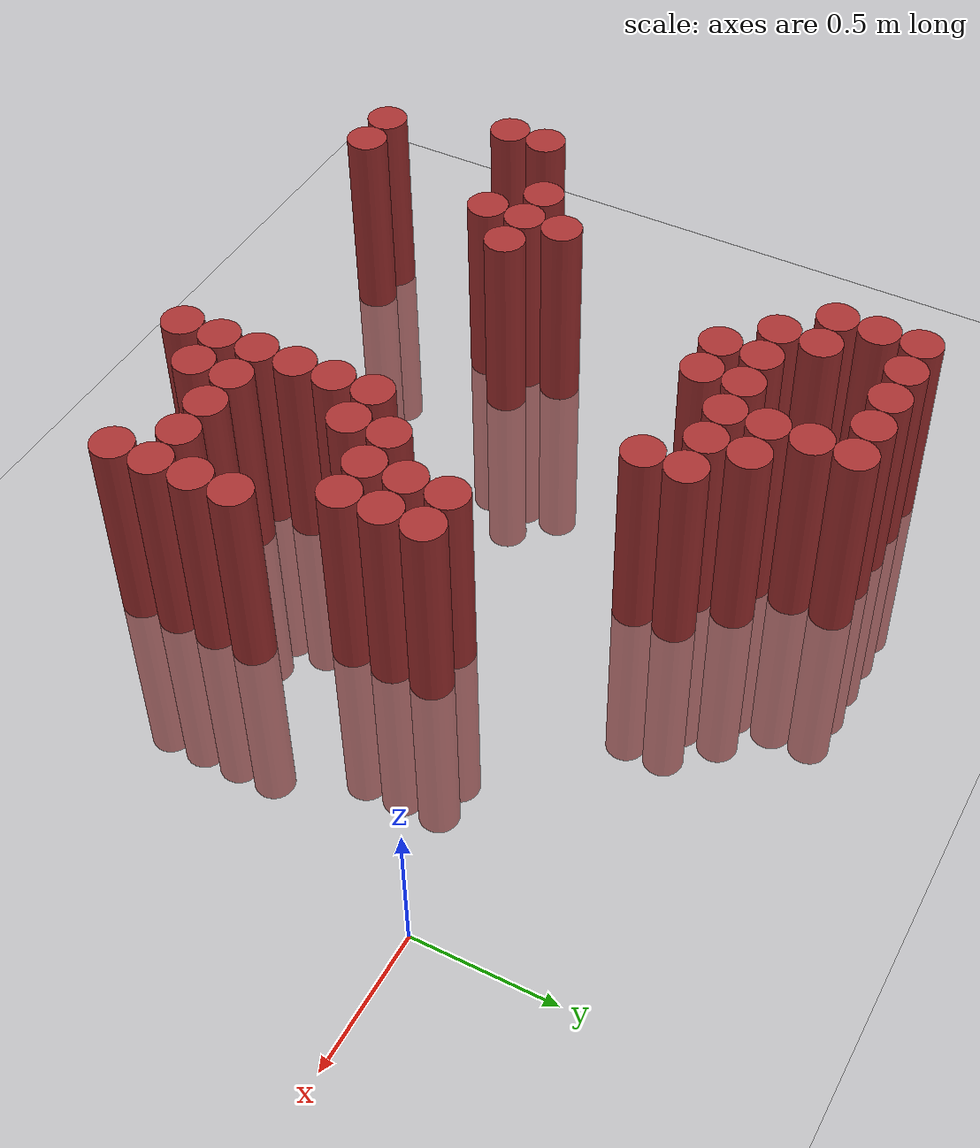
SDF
<sdf version="1.6">
 <world name="default">
  <model name="ground_plane">
   <static>1</static>
   <link name="link">
    <collision name="collision">
     <geometry><plane><normal>0 0 1</normal><size>100 100</size></plane></geometry>
     <surface><friction><ode><mu>100</mu><mu2>50</mu2></ode></friction></surface>
    </collision>
    <visual name="visual">
     <cast_shadows>0</cast_shadows>
     <geometry><plane><normal>0 0 1</normal><size>100 100</size></plane></geometry>
     <material>
      <script><uri>file://media/materials/scripts/gazebo.material</uri><name>Gazebo/Grey</name></script>
     </material>
    </visual>
   </link>
  </model>
  <model name="unit_cylinder_300">
   <static>1</static>
   <pose>-2.825000 -1.175000 0.000000 0.000000 0.000000 0.000000</pose>
   <link name="link">
    <inertial>
     <mass>1</mass>
     <inertia><ixx>0.145833</ixx><ixy>0</ixy><ixz>0</ixz><iyy>0.145833</iyy><iyz>0</iyz><izz>0.125</izz></inertia>
    </inertial>
    <collision name="collision">
     <geometry><cylinder><radius>0.075000</radius><length>1.5</length></cylinder></geometry>
    </collision>
    <visual name="visual">
     <geometry><cylinder><radius>0.075000</radius><length>1.5</length></cylinder></geometry>
     <material>
      <ambient>0.648000 0.192000 0.192000 1</ambient>
      <diffuse>0.648000 0.192000 0.192000 1</diffuse>
     </material>
     <material>
      <script><name>Gazebo/Grey</name><uri>file://media/materials/scripts/gazebo.material</uri></script>
     </material>
    </visual>
   </link>
  </model>
  <model name="unit_cylinder_301">
   <static>1</static>
   <pose>-2.825000 -1.025000 0.000000 0.000000 0.000000 0.000000</pose>
   <link name="link">
    <inertial>
     <mass>1</mass>
     <inertia><ixx>0.145833</ixx><ixy>0</ixy><ixz>0</ixz><iyy>0.145833</iyy><iyz>0</iyz><izz>0.125</izz></inertia>
    </inertial>
    <collision name="collision">
     <geometry><cylinder><radius>0.075000</radius><length>1.5</length></cylinder></geometry>
    </collision>
    <visual name="visual">
     <geometry><cylinder><radius>0.075000</radius><length>1.5</length></cylinder></geometry>
     <material>
      <ambient>0.648000 0.192000 0.192000 1</ambient>
      <diffuse>0.648000 0.192000 0.192000 1</diffuse>
     </material>
     <material>
      <script><name>Gazebo/Grey</name><uri>file://media/materials/scripts/gazebo.material</uri></script>
     </material>
    </visual>
   </link>
  </model>
  <model name="unit_cylinder_305">
   <static>1</static>
   <pose>-2.675000 -1.625000 0.000000 0.000000 0.000000 0.000000</pose>
   <link name="link">
    <inertial>
     <mass>1</mass>
     <inertia><ixx>0.145833</ixx><ixy>0</ixy><ixz>0</ixz><iyy>0.145833</iyy><iyz>0</iyz><izz>0.125</izz></inertia>
    </inertial>
    <collision name="collision">
     <geometry><cylinder><radius>0.075000</radius><length>1.5</length></cylinder></geometry>
    </collision>
    <visual name="visual">
     <geometry><cylinder><radius>0.075000</radius><length>1.5</length></cylinder></geometry>
     <material>
      <ambient>0.648000 0.192000 0.192000 1</ambient>
      <diffuse>0.648000 0.192000 0.192000 1</diffuse>
     </material>
     <material>
      <script><name>Gazebo/Grey</name><uri>file://media/materials/scripts/gazebo.material</uri></script>
     </material>
    </visual>
   </link>
  </model>
  <model name="unit_cylinder_309">
   <static>1</static>
   <pose>-2.525000 -1.625000 0.000000 0.000000 0.000000 0.000000</pose>
   <link name="link">
    <inertial>
     <mass>1</mass>
     <inertia><ixx>0.145833</ixx><ixy>0</ixy><ixz>0</ixz><iyy>0.145833</iyy><iyz>0</iyz><izz>0.125</izz></inertia>
    </inertial>
    <collision name="collision">
     <geometry><cylinder><radius>0.075000</radius><length>1.5</length></cylinder></geometry>
    </collision>
    <visual name="visual">
     <geometry><cylinder><radius>0.075000</radius><length>1.5</length></cylinder></geometry>
     <material>
      <ambient>0.648000 0.192000 0.192000 1</ambient>
      <diffuse>0.648000 0.192000 0.192000 1</diffuse>
     </material>
     <material>
      <script><name>Gazebo/Grey</name><uri>file://media/materials/scripts/gazebo.material</uri></script>
     </material>
    </visual>
   </link>
  </model>
  <model name="unit_cylinder_310">
   <static>1</static>
   <pose>-2.525000 -0.875000 0.000000 0.000000 0.000000 0.000000</pose>
   <link name="link">
    <inertial>
     <mass>1</mass>
     <inertia><ixx>0.145833</ixx><ixy>0</ixy><ixz>0</ixz><iyy>0.145833</iyy><iyz>0</iyz><izz>0.125</izz></inertia>
    </inertial>
    <collision name="collision">
     <geometry><cylinder><radius>0.075000</radius><length>1.5</length></cylinder></geometry>
    </collision>
    <visual name="visual">
     <geometry><cylinder><radius>0.075000</radius><length>1.5</length></cylinder></geometry>
     <material>
      <ambient>0.648000 0.192000 0.192000 1</ambient>
      <diffuse>0.648000 0.192000 0.192000 1</diffuse>
     </material>
     <material>
      <script><name>Gazebo/Grey</name><uri>file://media/materials/scripts/gazebo.material</uri></script>
     </material>
    </visual>
   </link>
  </model>
  <model name="unit_cylinder_313">
   <static>1</static>
   <pose>-2.375000 -1.025000 0.000000 0.000000 0.000000 0.000000</pose>
   <link name="link">
    <inertial>
     <mass>1</mass>
     <inertia><ixx>0.145833</ixx><ixy>0</ixy><ixz>0</ixz><iyy>0.145833</iyy><iyz>0</iyz><izz>0.125</izz></inertia>
    </inertial>
    <collision name="collision">
     <geometry><cylinder><radius>0.075000</radius><length>1.5</length></cylinder></geometry>
    </collision>
    <visual name="visual">
     <geometry><cylinder><radius>0.075000</radius><length>1.5</length></cylinder></geometry>
     <material>
      <ambient>0.648000 0.192000 0.192000 1</ambient>
      <diffuse>0.648000 0.192000 0.192000 1</diffuse>
     </material>
     <material>
      <script><name>Gazebo/Grey</name><uri>file://media/materials/scripts/gazebo.material</uri></script>
     </material>
    </visual>
   </link>
  </model>
  <model name="unit_cylinder_314">
   <static>1</static>
   <pose>-2.375000 -0.875000 0.000000 0.000000 0.000000 0.000000</pose>
   <link name="link">
    <inertial>
     <mass>1</mass>
     <inertia><ixx>0.145833</ixx><ixy>0</ixy><ixz>0</ixz><iyy>0.145833</iyy><iyz>0</iyz><izz>0.125</izz></inertia>
    </inertial>
    <collision name="collision">
     <geometry><cylinder><radius>0.075000</radius><length>1.5</length></cylinder></geometry>
    </collision>
    <visual name="visual">
     <geometry><cylinder><radius>0.075000</radius><length>1.5</length></cylinder></geometry>
     <material>
      <ambient>0.648000 0.192000 0.192000 1</ambient>
      <diffuse>0.648000 0.192000 0.192000 1</diffuse>
     </material>
     <material>
      <script><name>Gazebo/Grey</name><uri>file://media/materials/scripts/gazebo.material</uri></script>
     </material>
    </visual>
   </link>
  </model>
  <model name="unit_cylinder_315">
   <static>1</static>
   <pose>-2.375000 -0.725000 0.000000 0.000000 0.000000 0.000000</pose>
   <link name="link">
    <inertial>
     <mass>1</mass>
     <inertia><ixx>0.145833</ixx><ixy>0</ixy><ixz>0</ixz><iyy>0.145833</iyy><iyz>0</iyz><izz>0.125</izz></inertia>
    </inertial>
    <collision name="collision">
     <geometry><cylinder><radius>0.075000</radius><length>1.5</length></cylinder></geometry>
    </collision>
    <visual name="visual">
     <geometry><cylinder><radius>0.075000</radius><length>1.5</length></cylinder></geometry>
     <material>
      <ambient>0.648000 0.192000 0.192000 1</ambient>
      <diffuse>0.648000 0.192000 0.192000 1</diffuse>
     </material>
     <material>
      <script><name>Gazebo/Grey</name><uri>file://media/materials/scripts/gazebo.material</uri></script>
     </material>
    </visual>
   </link>
  </model>
  <model name="unit_cylinder_316">
   <static>1</static>
   <pose>-2.375000 0.325000 0.000000 0.000000 0.000000 0.000000</pose>
   <link name="link">
    <inertial>
     <mass>1</mass>
     <inertia><ixx>0.145833</ixx><ixy>0</ixy><ixz>0</ixz><iyy>0.145833</iyy><iyz>0</iyz><izz>0.125</izz></inertia>
    </inertial>
    <collision name="collision">
     <geometry><cylinder><radius>0.075000</radius><length>1.5</length></cylinder></geometry>
    </collision>
    <visual name="visual">
     <geometry><cylinder><radius>0.075000</radius><length>1.5</length></cylinder></geometry>
     <material>
      <ambient>0.648000 0.192000 0.192000 1</ambient>
      <diffuse>0.648000 0.192000 0.192000 1</diffuse>
     </material>
     <material>
      <script><name>Gazebo/Grey</name><uri>file://media/materials/scripts/gazebo.material</uri></script>
     </material>
    </visual>
   </link>
  </model>
  <model name="unit_cylinder_317">
   <static>1</static>
   <pose>-2.375000 0.475000 0.000000 0.000000 0.000000 0.000000</pose>
   <link name="link">
    <inertial>
     <mass>1</mass>
     <inertia><ixx>0.145833</ixx><ixy>0</ixy><ixz>0</ixz><iyy>0.145833</iyy><iyz>0</iyz><izz>0.125</izz></inertia>
    </inertial>
    <collision name="collision">
     <geometry><cylinder><radius>0.075000</radius><length>1.5</length></cylinder></geometry>
    </collision>
    <visual name="visual">
     <geometry><cylinder><radius>0.075000</radius><length>1.5</length></cylinder></geometry>
     <material>
      <ambient>0.648000 0.192000 0.192000 1</ambient>
      <diffuse>0.648000 0.192000 0.192000 1</diffuse>
     </material>
     <material>
      <script><name>Gazebo/Grey</name><uri>file://media/materials/scripts/gazebo.material</uri></script>
     </material>
    </visual>
   </link>
  </model>
  <model name="unit_cylinder_318">
   <static>1</static>
   <pose>-2.375000 0.625000 0.000000 0.000000 0.000000 0.000000</pose>
   <link name="link">
    <inertial>
     <mass>1</mass>
     <inertia><ixx>0.145833</ixx><ixy>0</ixy><ixz>0</ixz><iyy>0.145833</iyy><iyz>0</iyz><izz>0.125</izz></inertia>
    </inertial>
    <collision name="collision">
     <geometry><cylinder><radius>0.075000</radius><length>1.5</length></cylinder></geometry>
    </collision>
    <visual name="visual">
     <geometry><cylinder><radius>0.075000</radius><length>1.5</length></cylinder></geometry>
     <material>
      <ambient>0.648000 0.192000 0.192000 1</ambient>
      <diffuse>0.648000 0.192000 0.192000 1</diffuse>
     </material>
     <material>
      <script><name>Gazebo/Grey</name><uri>file://media/materials/scripts/gazebo.material</uri></script>
     </material>
    </visual>
   </link>
  </model>
  <model name="unit_cylinder_321">
   <static>1</static>
   <pose>-2.225000 -0.875000 0.000000 0.000000 0.000000 0.000000</pose>
   <link name="link">
    <inertial>
     <mass>1</mass>
     <inertia><ixx>0.145833</ixx><ixy>0</ixy><ixz>0</ixz><iyy>0.145833</iyy><iyz>0</iyz><izz>0.125</izz></inertia>
    </inertial>
    <collision name="collision">
     <geometry><cylinder><radius>0.075000</radius><length>1.5</length></cylinder></geometry>
    </collision>
    <visual name="visual">
     <geometry><cylinder><radius>0.075000</radius><length>1.5</length></cylinder></geometry>
     <material>
      <ambient>0.648000 0.192000 0.192000 1</ambient>
      <diffuse>0.648000 0.192000 0.192000 1</diffuse>
     </material>
     <material>
      <script><name>Gazebo/Grey</name><uri>file://media/materials/scripts/gazebo.material</uri></script>
     </material>
    </visual>
   </link>
  </model>
  <model name="unit_cylinder_322">
   <static>1</static>
   <pose>-2.225000 0.175000 0.000000 0.000000 0.000000 0.000000</pose>
   <link name="link">
    <inertial>
     <mass>1</mass>
     <inertia><ixx>0.145833</ixx><ixy>0</ixy><ixz>0</ixz><iyy>0.145833</iyy><iyz>0</iyz><izz>0.125</izz></inertia>
    </inertial>
    <collision name="collision">
     <geometry><cylinder><radius>0.075000</radius><length>1.5</length></cylinder></geometry>
    </collision>
    <visual name="visual">
     <geometry><cylinder><radius>0.075000</radius><length>1.5</length></cylinder></geometry>
     <material>
      <ambient>0.648000 0.192000 0.192000 1</ambient>
      <diffuse>0.648000 0.192000 0.192000 1</diffuse>
     </material>
     <material>
      <script><name>Gazebo/Grey</name><uri>file://media/materials/scripts/gazebo.material</uri></script>
     </material>
    </visual>
   </link>
  </model>
  <model name="unit_cylinder_323">
   <static>1</static>
   <pose>-2.225000 0.325000 0.000000 0.000000 0.000000 0.000000</pose>
   <link name="link">
    <inertial>
     <mass>1</mass>
     <inertia><ixx>0.145833</ixx><ixy>0</ixy><ixz>0</ixz><iyy>0.145833</iyy><iyz>0</iyz><izz>0.125</izz></inertia>
    </inertial>
    <collision name="collision">
     <geometry><cylinder><radius>0.075000</radius><length>1.5</length></cylinder></geometry>
    </collision>
    <visual name="visual">
     <geometry><cylinder><radius>0.075000</radius><length>1.5</length></cylinder></geometry>
     <material>
      <ambient>0.648000 0.192000 0.192000 1</ambient>
      <diffuse>0.648000 0.192000 0.192000 1</diffuse>
     </material>
     <material>
      <script><name>Gazebo/Grey</name><uri>file://media/materials/scripts/gazebo.material</uri></script>
     </material>
    </visual>
   </link>
  </model>
  <model name="unit_cylinder_324">
   <static>1</static>
   <pose>-2.225000 0.625000 0.000000 0.000000 0.000000 0.000000</pose>
   <link name="link">
    <inertial>
     <mass>1</mass>
     <inertia><ixx>0.145833</ixx><ixy>0</ixy><ixz>0</ixz><iyy>0.145833</iyy><iyz>0</iyz><izz>0.125</izz></inertia>
    </inertial>
    <collision name="collision">
     <geometry><cylinder><radius>0.075000</radius><length>1.5</length></cylinder></geometry>
    </collision>
    <visual name="visual">
     <geometry><cylinder><radius>0.075000</radius><length>1.5</length></cylinder></geometry>
     <material>
      <ambient>0.648000 0.192000 0.192000 1</ambient>
      <diffuse>0.648000 0.192000 0.192000 1</diffuse>
     </material>
     <material>
      <script><name>Gazebo/Grey</name><uri>file://media/materials/scripts/gazebo.material</uri></script>
     </material>
    </visual>
   </link>
  </model>
  <model name="unit_cylinder_328">
   <static>1</static>
   <pose>-2.075000 0.025000 0.000000 0.000000 0.000000 0.000000</pose>
   <link name="link">
    <inertial>
     <mass>1</mass>
     <inertia><ixx>0.145833</ixx><ixy>0</ixy><ixz>0</ixz><iyy>0.145833</iyy><iyz>0</iyz><izz>0.125</izz></inertia>
    </inertial>
    <collision name="collision">
     <geometry><cylinder><radius>0.075000</radius><length>1.5</length></cylinder></geometry>
    </collision>
    <visual name="visual">
     <geometry><cylinder><radius>0.075000</radius><length>1.5</length></cylinder></geometry>
     <material>
      <ambient>0.648000 0.192000 0.192000 1</ambient>
      <diffuse>0.648000 0.192000 0.192000 1</diffuse>
     </material>
     <material>
      <script><name>Gazebo/Grey</name><uri>file://media/materials/scripts/gazebo.material</uri></script>
     </material>
    </visual>
   </link>
  </model>
  <model name="unit_cylinder_329">
   <static>1</static>
   <pose>-2.075000 0.175000 0.000000 0.000000 0.000000 0.000000</pose>
   <link name="link">
    <inertial>
     <mass>1</mass>
     <inertia><ixx>0.145833</ixx><ixy>0</ixy><ixz>0</ixz><iyy>0.145833</iyy><iyz>0</iyz><izz>0.125</izz></inertia>
    </inertial>
    <collision name="collision">
     <geometry><cylinder><radius>0.075000</radius><length>1.5</length></cylinder></geometry>
    </collision>
    <visual name="visual">
     <geometry><cylinder><radius>0.075000</radius><length>1.5</length></cylinder></geometry>
     <material>
      <ambient>0.648000 0.192000 0.192000 1</ambient>
      <diffuse>0.648000 0.192000 0.192000 1</diffuse>
     </material>
     <material>
      <script><name>Gazebo/Grey</name><uri>file://media/materials/scripts/gazebo.material</uri></script>
     </material>
    </visual>
   </link>
  </model>
  <model name="unit_cylinder_330">
   <static>1</static>
   <pose>-2.075000 0.625000 0.000000 0.000000 0.000000 0.000000</pose>
   <link name="link">
    <inertial>
     <mass>1</mass>
     <inertia><ixx>0.145833</ixx><ixy>0</ixy><ixz>0</ixz><iyy>0.145833</iyy><iyz>0</iyz><izz>0.125</izz></inertia>
    </inertial>
    <collision name="collision">
     <geometry><cylinder><radius>0.075000</radius><length>1.5</length></cylinder></geometry>
    </collision>
    <visual name="visual">
     <geometry><cylinder><radius>0.075000</radius><length>1.5</length></cylinder></geometry>
     <material>
      <ambient>0.648000 0.192000 0.192000 1</ambient>
      <diffuse>0.648000 0.192000 0.192000 1</diffuse>
     </material>
     <material>
      <script><name>Gazebo/Grey</name><uri>file://media/materials/scripts/gazebo.material</uri></script>
     </material>
    </visual>
   </link>
  </model>
  <model name="unit_cylinder_337">
   <static>1</static>
   <pose>-1.925000 0.025000 0.000000 0.000000 0.000000 0.000000</pose>
   <link name="link">
    <inertial>
     <mass>1</mass>
     <inertia><ixx>0.145833</ixx><ixy>0</ixy><ixz>0</ixz><iyy>0.145833</iyy><iyz>0</iyz><izz>0.125</izz></inertia>
    </inertial>
    <collision name="collision">
     <geometry><cylinder><radius>0.075000</radius><length>1.5</length></cylinder></geometry>
    </collision>
    <visual name="visual">
     <geometry><cylinder><radius>0.075000</radius><length>1.5</length></cylinder></geometry>
     <material>
      <ambient>0.648000 0.192000 0.192000 1</ambient>
      <diffuse>0.648000 0.192000 0.192000 1</diffuse>
     </material>
     <material>
      <script><name>Gazebo/Grey</name><uri>file://media/materials/scripts/gazebo.material</uri></script>
     </material>
    </visual>
   </link>
  </model>
  <model name="unit_cylinder_338">
   <static>1</static>
   <pose>-1.925000 0.175000 0.000000 0.000000 0.000000 0.000000</pose>
   <link name="link">
    <inertial>
     <mass>1</mass>
     <inertia><ixx>0.145833</ixx><ixy>0</ixy><ixz>0</ixz><iyy>0.145833</iyy><iyz>0</iyz><izz>0.125</izz></inertia>
    </inertial>
    <collision name="collision">
     <geometry><cylinder><radius>0.075000</radius><length>1.5</length></cylinder></geometry>
    </collision>
    <visual name="visual">
     <geometry><cylinder><radius>0.075000</radius><length>1.5</length></cylinder></geometry>
     <material>
      <ambient>0.648000 0.192000 0.192000 1</ambient>
      <diffuse>0.648000 0.192000 0.192000 1</diffuse>
     </material>
     <material>
      <script><name>Gazebo/Grey</name><uri>file://media/materials/scripts/gazebo.material</uri></script>
     </material>
    </visual>
   </link>
  </model>
  <model name="unit_cylinder_339">
   <static>1</static>
   <pose>-1.925000 0.625000 0.000000 0.000000 0.000000 0.000000</pose>
   <link name="link">
    <inertial>
     <mass>1</mass>
     <inertia><ixx>0.145833</ixx><ixy>0</ixy><ixz>0</ixz><iyy>0.145833</iyy><iyz>0</iyz><izz>0.125</izz></inertia>
    </inertial>
    <collision name="collision">
     <geometry><cylinder><radius>0.075000</radius><length>1.5</length></cylinder></geometry>
    </collision>
    <visual name="visual">
     <geometry><cylinder><radius>0.075000</radius><length>1.5</length></cylinder></geometry>
     <material>
      <ambient>0.648000 0.192000 0.192000 1</ambient>
      <diffuse>0.648000 0.192000 0.192000 1</diffuse>
     </material>
     <material>
      <script><name>Gazebo/Grey</name><uri>file://media/materials/scripts/gazebo.material</uri></script>
     </material>
    </visual>
   </link>
  </model>
  <model name="unit_cylinder_342">
   <static>1</static>
   <pose>-1.775000 0.175000 0.000000 0.000000 0.000000 0.000000</pose>
   <link name="link">
    <inertial>
     <mass>1</mass>
     <inertia><ixx>0.145833</ixx><ixy>0</ixy><ixz>0</ixz><iyy>0.145833</iyy><iyz>0</iyz><izz>0.125</izz></inertia>
    </inertial>
    <collision name="collision">
     <geometry><cylinder><radius>0.075000</radius><length>1.5</length></cylinder></geometry>
    </collision>
    <visual name="visual">
     <geometry><cylinder><radius>0.075000</radius><length>1.5</length></cylinder></geometry>
     <material>
      <ambient>0.648000 0.192000 0.192000 1</ambient>
      <diffuse>0.648000 0.192000 0.192000 1</diffuse>
     </material>
     <material>
      <script><name>Gazebo/Grey</name><uri>file://media/materials/scripts/gazebo.material</uri></script>
     </material>
    </visual>
   </link>
  </model>
  <model name="unit_cylinder_343">
   <static>1</static>
   <pose>-1.775000 0.325000 0.000000 0.000000 0.000000 0.000000</pose>
   <link name="link">
    <inertial>
     <mass>1</mass>
     <inertia><ixx>0.145833</ixx><ixy>0</ixy><ixz>0</ixz><iyy>0.145833</iyy><iyz>0</iyz><izz>0.125</izz></inertia>
    </inertial>
    <collision name="collision">
     <geometry><cylinder><radius>0.075000</radius><length>1.5</length></cylinder></geometry>
    </collision>
    <visual name="visual">
     <geometry><cylinder><radius>0.075000</radius><length>1.5</length></cylinder></geometry>
     <material>
      <ambient>0.648000 0.192000 0.192000 1</ambient>
      <diffuse>0.648000 0.192000 0.192000 1</diffuse>
     </material>
     <material>
      <script><name>Gazebo/Grey</name><uri>file://media/materials/scripts/gazebo.material</uri></script>
     </material>
    </visual>
   </link>
  </model>
  <model name="unit_cylinder_344">
   <static>1</static>
   <pose>-1.775000 0.475000 0.000000 0.000000 0.000000 0.000000</pose>
   <link name="link">
    <inertial>
     <mass>1</mass>
     <inertia><ixx>0.145833</ixx><ixy>0</ixy><ixz>0</ixz><iyy>0.145833</iyy><iyz>0</iyz><izz>0.125</izz></inertia>
    </inertial>
    <collision name="collision">
     <geometry><cylinder><radius>0.075000</radius><length>1.5</length></cylinder></geometry>
    </collision>
    <visual name="visual">
     <geometry><cylinder><radius>0.075000</radius><length>1.5</length></cylinder></geometry>
     <material>
      <ambient>0.648000 0.192000 0.192000 1</ambient>
      <diffuse>0.648000 0.192000 0.192000 1</diffuse>
     </material>
     <material>
      <script><name>Gazebo/Grey</name><uri>file://media/materials/scripts/gazebo.material</uri></script>
     </material>
    </visual>
   </link>
  </model>
  <model name="unit_cylinder_345">
   <static>1</static>
   <pose>-1.775000 0.625000 0.000000 0.000000 0.000000 0.000000</pose>
   <link name="link">
    <inertial>
     <mass>1</mass>
     <inertia><ixx>0.145833</ixx><ixy>0</ixy><ixz>0</ixz><iyy>0.145833</iyy><iyz>0</iyz><izz>0.125</izz></inertia>
    </inertial>
    <collision name="collision">
     <geometry><cylinder><radius>0.075000</radius><length>1.5</length></cylinder></geometry>
    </collision>
    <visual name="visual">
     <geometry><cylinder><radius>0.075000</radius><length>1.5</length></cylinder></geometry>
     <material>
      <ambient>0.648000 0.192000 0.192000 1</ambient>
      <diffuse>0.648000 0.192000 0.192000 1</diffuse>
     </material>
     <material>
      <script><name>Gazebo/Grey</name><uri>file://media/materials/scripts/gazebo.material</uri></script>
     </material>
    </visual>
   </link>
  </model>
  <model name="unit_cylinder_350">
   <static>1</static>
   <pose>-1.625000 0.175000 0.000000 0.000000 0.000000 0.000000</pose>
   <link name="link">
    <inertial>
     <mass>1</mass>
     <inertia><ixx>0.145833</ixx><ixy>0</ixy><ixz>0</ixz><iyy>0.145833</iyy><iyz>0</iyz><izz>0.125</izz></inertia>
    </inertial>
    <collision name="collision">
     <geometry><cylinder><radius>0.075000</radius><length>1.5</length></cylinder></geometry>
    </collision>
    <visual name="visual">
     <geometry><cylinder><radius>0.075000</radius><length>1.5</length></cylinder></geometry>
     <material>
      <ambient>0.648000 0.192000 0.192000 1</ambient>
      <diffuse>0.648000 0.192000 0.192000 1</diffuse>
     </material>
     <material>
      <script><name>Gazebo/Grey</name><uri>file://media/materials/scripts/gazebo.material</uri></script>
     </material>
    </visual>
   </link>
  </model>
  <model name="unit_cylinder_351">
   <static>1</static>
   <pose>-1.625000 0.325000 0.000000 0.000000 0.000000 0.000000</pose>
   <link name="link">
    <inertial>
     <mass>1</mass>
     <inertia><ixx>0.145833</ixx><ixy>0</ixy><ixz>0</ixz><iyy>0.145833</iyy><iyz>0</iyz><izz>0.125</izz></inertia>
    </inertial>
    <collision name="collision">
     <geometry><cylinder><radius>0.075000</radius><length>1.5</length></cylinder></geometry>
    </collision>
    <visual name="visual">
     <geometry><cylinder><radius>0.075000</radius><length>1.5</length></cylinder></geometry>
     <material>
      <ambient>0.648000 0.192000 0.192000 1</ambient>
      <diffuse>0.648000 0.192000 0.192000 1</diffuse>
     </material>
     <material>
      <script><name>Gazebo/Grey</name><uri>file://media/materials/scripts/gazebo.material</uri></script>
     </material>
    </visual>
   </link>
  </model>
  <model name="unit_cylinder_358">
   <static>1</static>
   <pose>-1.475000 0.025000 0.000000 0.000000 0.000000 0.000000</pose>
   <link name="link">
    <inertial>
     <mass>1</mass>
     <inertia><ixx>0.145833</ixx><ixy>0</ixy><ixz>0</ixz><iyy>0.145833</iyy><iyz>0</iyz><izz>0.125</izz></inertia>
    </inertial>
    <collision name="collision">
     <geometry><cylinder><radius>0.075000</radius><length>1.5</length></cylinder></geometry>
    </collision>
    <visual name="visual">
     <geometry><cylinder><radius>0.075000</radius><length>1.5</length></cylinder></geometry>
     <material>
      <ambient>0.648000 0.192000 0.192000 1</ambient>
      <diffuse>0.648000 0.192000 0.192000 1</diffuse>
     </material>
     <material>
      <script><name>Gazebo/Grey</name><uri>file://media/materials/scripts/gazebo.material</uri></script>
     </material>
    </visual>
   </link>
  </model>
  <model name="unit_cylinder_359">
   <static>1</static>
   <pose>-1.475000 0.175000 0.000000 0.000000 0.000000 0.000000</pose>
   <link name="link">
    <inertial>
     <mass>1</mass>
     <inertia><ixx>0.145833</ixx><ixy>0</ixy><ixz>0</ixz><iyy>0.145833</iyy><iyz>0</iyz><izz>0.125</izz></inertia>
    </inertial>
    <collision name="collision">
     <geometry><cylinder><radius>0.075000</radius><length>1.5</length></cylinder></geometry>
    </collision>
    <visual name="visual">
     <geometry><cylinder><radius>0.075000</radius><length>1.5</length></cylinder></geometry>
     <material>
      <ambient>0.648000 0.192000 0.192000 1</ambient>
      <diffuse>0.648000 0.192000 0.192000 1</diffuse>
     </material>
     <material>
      <script><name>Gazebo/Grey</name><uri>file://media/materials/scripts/gazebo.material</uri></script>
     </material>
    </visual>
   </link>
  </model>
  <model name="unit_cylinder_366">
   <static>1</static>
   <pose>-1.325000 -1.625000 0.000000 0.000000 0.000000 0.000000</pose>
   <link name="link">
    <inertial>
     <mass>1</mass>
     <inertia><ixx>0.145833</ixx><ixy>0</ixy><ixz>0</ixz><iyy>0.145833</iyy><iyz>0</iyz><izz>0.125</izz></inertia>
    </inertial>
    <collision name="collision">
     <geometry><cylinder><radius>0.075000</radius><length>1.5</length></cylinder></geometry>
    </collision>
    <visual name="visual">
     <geometry><cylinder><radius>0.075000</radius><length>1.5</length></cylinder></geometry>
     <material>
      <ambient>0.648000 0.192000 0.192000 1</ambient>
      <diffuse>0.648000 0.192000 0.192000 1</diffuse>
     </material>
     <material>
      <script><name>Gazebo/Grey</name><uri>file://media/materials/scripts/gazebo.material</uri></script>
     </material>
    </visual>
   </link>
  </model>
  <model name="unit_cylinder_367">
   <static>1</static>
   <pose>-1.325000 -1.475000 0.000000 0.000000 0.000000 0.000000</pose>
   <link name="link">
    <inertial>
     <mass>1</mass>
     <inertia><ixx>0.145833</ixx><ixy>0</ixy><ixz>0</ixz><iyy>0.145833</iyy><iyz>0</iyz><izz>0.125</izz></inertia>
    </inertial>
    <collision name="collision">
     <geometry><cylinder><radius>0.075000</radius><length>1.5</length></cylinder></geometry>
    </collision>
    <visual name="visual">
     <geometry><cylinder><radius>0.075000</radius><length>1.5</length></cylinder></geometry>
     <material>
      <ambient>0.648000 0.192000 0.192000 1</ambient>
      <diffuse>0.648000 0.192000 0.192000 1</diffuse>
     </material>
     <material>
      <script><name>Gazebo/Grey</name><uri>file://media/materials/scripts/gazebo.material</uri></script>
     </material>
    </visual>
   </link>
  </model>
  <model name="unit_cylinder_368">
   <static>1</static>
   <pose>-1.325000 -1.325000 0.000000 0.000000 0.000000 0.000000</pose>
   <link name="link">
    <inertial>
     <mass>1</mass>
     <inertia><ixx>0.145833</ixx><ixy>0</ixy><ixz>0</ixz><iyy>0.145833</iyy><iyz>0</iyz><izz>0.125</izz></inertia>
    </inertial>
    <collision name="collision">
     <geometry><cylinder><radius>0.075000</radius><length>1.5</length></cylinder></geometry>
    </collision>
    <visual name="visual">
     <geometry><cylinder><radius>0.075000</radius><length>1.5</length></cylinder></geometry>
     <material>
      <ambient>0.648000 0.192000 0.192000 1</ambient>
      <diffuse>0.648000 0.192000 0.192000 1</diffuse>
     </material>
     <material>
      <script><name>Gazebo/Grey</name><uri>file://media/materials/scripts/gazebo.material</uri></script>
     </material>
    </visual>
   </link>
  </model>
  <model name="unit_cylinder_369">
   <static>1</static>
   <pose>-1.325000 -1.175000 0.000000 0.000000 0.000000 0.000000</pose>
   <link name="link">
    <inertial>
     <mass>1</mass>
     <inertia><ixx>0.145833</ixx><ixy>0</ixy><ixz>0</ixz><iyy>0.145833</iyy><iyz>0</iyz><izz>0.125</izz></inertia>
    </inertial>
    <collision name="collision">
     <geometry><cylinder><radius>0.075000</radius><length>1.5</length></cylinder></geometry>
    </collision>
    <visual name="visual">
     <geometry><cylinder><radius>0.075000</radius><length>1.5</length></cylinder></geometry>
     <material>
      <ambient>0.648000 0.192000 0.192000 1</ambient>
      <diffuse>0.648000 0.192000 0.192000 1</diffuse>
     </material>
     <material>
      <script><name>Gazebo/Grey</name><uri>file://media/materials/scripts/gazebo.material</uri></script>
     </material>
    </visual>
   </link>
  </model>
  <model name="unit_cylinder_370">
   <static>1</static>
   <pose>-1.325000 -1.025000 0.000000 0.000000 0.000000 0.000000</pose>
   <link name="link">
    <inertial>
     <mass>1</mass>
     <inertia><ixx>0.145833</ixx><ixy>0</ixy><ixz>0</ixz><iyy>0.145833</iyy><iyz>0</iyz><izz>0.125</izz></inertia>
    </inertial>
    <collision name="collision">
     <geometry><cylinder><radius>0.075000</radius><length>1.5</length></cylinder></geometry>
    </collision>
    <visual name="visual">
     <geometry><cylinder><radius>0.075000</radius><length>1.5</length></cylinder></geometry>
     <material>
      <ambient>0.648000 0.192000 0.192000 1</ambient>
      <diffuse>0.648000 0.192000 0.192000 1</diffuse>
     </material>
     <material>
      <script><name>Gazebo/Grey</name><uri>file://media/materials/scripts/gazebo.material</uri></script>
     </material>
    </visual>
   </link>
  </model>
  <model name="unit_cylinder_371">
   <static>1</static>
   <pose>-1.325000 -0.875000 0.000000 0.000000 0.000000 0.000000</pose>
   <link name="link">
    <inertial>
     <mass>1</mass>
     <inertia><ixx>0.145833</ixx><ixy>0</ixy><ixz>0</ixz><iyy>0.145833</iyy><iyz>0</iyz><izz>0.125</izz></inertia>
    </inertial>
    <collision name="collision">
     <geometry><cylinder><radius>0.075000</radius><length>1.5</length></cylinder></geometry>
    </collision>
    <visual name="visual">
     <geometry><cylinder><radius>0.075000</radius><length>1.5</length></cylinder></geometry>
     <material>
      <ambient>0.648000 0.192000 0.192000 1</ambient>
      <diffuse>0.648000 0.192000 0.192000 1</diffuse>
     </material>
     <material>
      <script><name>Gazebo/Grey</name><uri>file://media/materials/scripts/gazebo.material</uri></script>
     </material>
    </visual>
   </link>
  </model>
  <model name="unit_cylinder_375">
   <static>1</static>
   <pose>-1.175000 -1.475000 0.000000 0.000000 0.000000 0.000000</pose>
   <link name="link">
    <inertial>
     <mass>1</mass>
     <inertia><ixx>0.145833</ixx><ixy>0</ixy><ixz>0</ixz><iyy>0.145833</iyy><iyz>0</iyz><izz>0.125</izz></inertia>
    </inertial>
    <collision name="collision">
     <geometry><cylinder><radius>0.075000</radius><length>1.5</length></cylinder></geometry>
    </collision>
    <visual name="visual">
     <geometry><cylinder><radius>0.075000</radius><length>1.5</length></cylinder></geometry>
     <material>
      <ambient>0.648000 0.192000 0.192000 1</ambient>
      <diffuse>0.648000 0.192000 0.192000 1</diffuse>
     </material>
     <material>
      <script><name>Gazebo/Grey</name><uri>file://media/materials/scripts/gazebo.material</uri></script>
     </material>
    </visual>
   </link>
  </model>
  <model name="unit_cylinder_376">
   <static>1</static>
   <pose>-1.175000 -1.325000 0.000000 0.000000 0.000000 0.000000</pose>
   <link name="link">
    <inertial>
     <mass>1</mass>
     <inertia><ixx>0.145833</ixx><ixy>0</ixy><ixz>0</ixz><iyy>0.145833</iyy><iyz>0</iyz><izz>0.125</izz></inertia>
    </inertial>
    <collision name="collision">
     <geometry><cylinder><radius>0.075000</radius><length>1.5</length></cylinder></geometry>
    </collision>
    <visual name="visual">
     <geometry><cylinder><radius>0.075000</radius><length>1.5</length></cylinder></geometry>
     <material>
      <ambient>0.648000 0.192000 0.192000 1</ambient>
      <diffuse>0.648000 0.192000 0.192000 1</diffuse>
     </material>
     <material>
      <script><name>Gazebo/Grey</name><uri>file://media/materials/scripts/gazebo.material</uri></script>
     </material>
    </visual>
   </link>
  </model>
  <model name="unit_cylinder_377">
   <static>1</static>
   <pose>-1.175000 -0.875000 0.000000 0.000000 0.000000 0.000000</pose>
   <link name="link">
    <inertial>
     <mass>1</mass>
     <inertia><ixx>0.145833</ixx><ixy>0</ixy><ixz>0</ixz><iyy>0.145833</iyy><iyz>0</iyz><izz>0.125</izz></inertia>
    </inertial>
    <collision name="collision">
     <geometry><cylinder><radius>0.075000</radius><length>1.5</length></cylinder></geometry>
    </collision>
    <visual name="visual">
     <geometry><cylinder><radius>0.075000</radius><length>1.5</length></cylinder></geometry>
     <material>
      <ambient>0.648000 0.192000 0.192000 1</ambient>
      <diffuse>0.648000 0.192000 0.192000 1</diffuse>
     </material>
     <material>
      <script><name>Gazebo/Grey</name><uri>file://media/materials/scripts/gazebo.material</uri></script>
     </material>
    </visual>
   </link>
  </model>
  <model name="unit_cylinder_378">
   <static>1</static>
   <pose>-1.175000 -0.725000 0.000000 0.000000 0.000000 0.000000</pose>
   <link name="link">
    <inertial>
     <mass>1</mass>
     <inertia><ixx>0.145833</ixx><ixy>0</ixy><ixz>0</ixz><iyy>0.145833</iyy><iyz>0</iyz><izz>0.125</izz></inertia>
    </inertial>
    <collision name="collision">
     <geometry><cylinder><radius>0.075000</radius><length>1.5</length></cylinder></geometry>
    </collision>
    <visual name="visual">
     <geometry><cylinder><radius>0.075000</radius><length>1.5</length></cylinder></geometry>
     <material>
      <ambient>0.648000 0.192000 0.192000 1</ambient>
      <diffuse>0.648000 0.192000 0.192000 1</diffuse>
     </material>
     <material>
      <script><name>Gazebo/Grey</name><uri>file://media/materials/scripts/gazebo.material</uri></script>
     </material>
    </visual>
   </link>
  </model>
  <model name="unit_cylinder_384">
   <static>1</static>
   <pose>-1.025000 -1.325000 0.000000 0.000000 0.000000 0.000000</pose>
   <link name="link">
    <inertial>
     <mass>1</mass>
     <inertia><ixx>0.145833</ixx><ixy>0</ixy><ixz>0</ixz><iyy>0.145833</iyy><iyz>0</iyz><izz>0.125</izz></inertia>
    </inertial>
    <collision name="collision">
     <geometry><cylinder><radius>0.075000</radius><length>1.5</length></cylinder></geometry>
    </collision>
    <visual name="visual">
     <geometry><cylinder><radius>0.075000</radius><length>1.5</length></cylinder></geometry>
     <material>
      <ambient>0.648000 0.192000 0.192000 1</ambient>
      <diffuse>0.648000 0.192000 0.192000 1</diffuse>
     </material>
     <material>
      <script><name>Gazebo/Grey</name><uri>file://media/materials/scripts/gazebo.material</uri></script>
     </material>
    </visual>
   </link>
  </model>
  <model name="unit_cylinder_385">
   <static>1</static>
   <pose>-1.025000 -0.725000 0.000000 0.000000 0.000000 0.000000</pose>
   <link name="link">
    <inertial>
     <mass>1</mass>
     <inertia><ixx>0.145833</ixx><ixy>0</ixy><ixz>0</ixz><iyy>0.145833</iyy><iyz>0</iyz><izz>0.125</izz></inertia>
    </inertial>
    <collision name="collision">
     <geometry><cylinder><radius>0.075000</radius><length>1.5</length></cylinder></geometry>
    </collision>
    <visual name="visual">
     <geometry><cylinder><radius>0.075000</radius><length>1.5</length></cylinder></geometry>
     <material>
      <ambient>0.648000 0.192000 0.192000 1</ambient>
      <diffuse>0.648000 0.192000 0.192000 1</diffuse>
     </material>
     <material>
      <script><name>Gazebo/Grey</name><uri>file://media/materials/scripts/gazebo.material</uri></script>
     </material>
    </visual>
   </link>
  </model>
  <model name="unit_cylinder_386">
   <static>1</static>
   <pose>-1.025000 -0.575000 0.000000 0.000000 0.000000 0.000000</pose>
   <link name="link">
    <inertial>
     <mass>1</mass>
     <inertia><ixx>0.145833</ixx><ixy>0</ixy><ixz>0</ixz><iyy>0.145833</iyy><iyz>0</iyz><izz>0.125</izz></inertia>
    </inertial>
    <collision name="collision">
     <geometry><cylinder><radius>0.075000</radius><length>1.5</length></cylinder></geometry>
    </collision>
    <visual name="visual">
     <geometry><cylinder><radius>0.075000</radius><length>1.5</length></cylinder></geometry>
     <material>
      <ambient>0.648000 0.192000 0.192000 1</ambient>
      <diffuse>0.648000 0.192000 0.192000 1</diffuse>
     </material>
     <material>
      <script><name>Gazebo/Grey</name><uri>file://media/materials/scripts/gazebo.material</uri></script>
     </material>
    </visual>
   </link>
  </model>
  <model name="unit_cylinder_387">
   <static>1</static>
   <pose>-1.025000 -0.425000 0.000000 0.000000 0.000000 0.000000</pose>
   <link name="link">
    <inertial>
     <mass>1</mass>
     <inertia><ixx>0.145833</ixx><ixy>0</ixy><ixz>0</ixz><iyy>0.145833</iyy><iyz>0</iyz><izz>0.125</izz></inertia>
    </inertial>
    <collision name="collision">
     <geometry><cylinder><radius>0.075000</radius><length>1.5</length></cylinder></geometry>
    </collision>
    <visual name="visual">
     <geometry><cylinder><radius>0.075000</radius><length>1.5</length></cylinder></geometry>
     <material>
      <ambient>0.648000 0.192000 0.192000 1</ambient>
      <diffuse>0.648000 0.192000 0.192000 1</diffuse>
     </material>
     <material>
      <script><name>Gazebo/Grey</name><uri>file://media/materials/scripts/gazebo.material</uri></script>
     </material>
    </visual>
   </link>
  </model>
  <model name="unit_cylinder_392">
   <static>1</static>
   <pose>-0.875000 -1.325000 0.000000 0.000000 0.000000 0.000000</pose>
   <link name="link">
    <inertial>
     <mass>1</mass>
     <inertia><ixx>0.145833</ixx><ixy>0</ixy><ixz>0</ixz><iyy>0.145833</iyy><iyz>0</iyz><izz>0.125</izz></inertia>
    </inertial>
    <collision name="collision">
     <geometry><cylinder><radius>0.075000</radius><length>1.5</length></cylinder></geometry>
    </collision>
    <visual name="visual">
     <geometry><cylinder><radius>0.075000</radius><length>1.5</length></cylinder></geometry>
     <material>
      <ambient>0.648000 0.192000 0.192000 1</ambient>
      <diffuse>0.648000 0.192000 0.192000 1</diffuse>
     </material>
     <material>
      <script><name>Gazebo/Grey</name><uri>file://media/materials/scripts/gazebo.material</uri></script>
     </material>
    </visual>
   </link>
  </model>
  <model name="unit_cylinder_393">
   <static>1</static>
   <pose>-0.875000 -0.725000 0.000000 0.000000 0.000000 0.000000</pose>
   <link name="link">
    <inertial>
     <mass>1</mass>
     <inertia><ixx>0.145833</ixx><ixy>0</ixy><ixz>0</ixz><iyy>0.145833</iyy><iyz>0</iyz><izz>0.125</izz></inertia>
    </inertial>
    <collision name="collision">
     <geometry><cylinder><radius>0.075000</radius><length>1.5</length></cylinder></geometry>
    </collision>
    <visual name="visual">
     <geometry><cylinder><radius>0.075000</radius><length>1.5</length></cylinder></geometry>
     <material>
      <ambient>0.648000 0.192000 0.192000 1</ambient>
      <diffuse>0.648000 0.192000 0.192000 1</diffuse>
     </material>
     <material>
      <script><name>Gazebo/Grey</name><uri>file://media/materials/scripts/gazebo.material</uri></script>
     </material>
    </visual>
   </link>
  </model>
  <model name="unit_cylinder_394">
   <static>1</static>
   <pose>-0.875000 -0.575000 0.000000 0.000000 0.000000 0.000000</pose>
   <link name="link">
    <inertial>
     <mass>1</mass>
     <inertia><ixx>0.145833</ixx><ixy>0</ixy><ixz>0</ixz><iyy>0.145833</iyy><iyz>0</iyz><izz>0.125</izz></inertia>
    </inertial>
    <collision name="collision">
     <geometry><cylinder><radius>0.075000</radius><length>1.5</length></cylinder></geometry>
    </collision>
    <visual name="visual">
     <geometry><cylinder><radius>0.075000</radius><length>1.5</length></cylinder></geometry>
     <material>
      <ambient>0.648000 0.192000 0.192000 1</ambient>
      <diffuse>0.648000 0.192000 0.192000 1</diffuse>
     </material>
     <material>
      <script><name>Gazebo/Grey</name><uri>file://media/materials/scripts/gazebo.material</uri></script>
     </material>
    </visual>
   </link>
  </model>
  <model name="unit_cylinder_395">
   <static>1</static>
   <pose>-0.875000 -0.425000 0.000000 0.000000 0.000000 0.000000</pose>
   <link name="link">
    <inertial>
     <mass>1</mass>
     <inertia><ixx>0.145833</ixx><ixy>0</ixy><ixz>0</ixz><iyy>0.145833</iyy><iyz>0</iyz><izz>0.125</izz></inertia>
    </inertial>
    <collision name="collision">
     <geometry><cylinder><radius>0.075000</radius><length>1.5</length></cylinder></geometry>
    </collision>
    <visual name="visual">
     <geometry><cylinder><radius>0.075000</radius><length>1.5</length></cylinder></geometry>
     <material>
      <ambient>0.648000 0.192000 0.192000 1</ambient>
      <diffuse>0.648000 0.192000 0.192000 1</diffuse>
     </material>
     <material>
      <script><name>Gazebo/Grey</name><uri>file://media/materials/scripts/gazebo.material</uri></script>
     </material>
    </visual>
   </link>
  </model>
  <model name="unit_cylinder_398">
   <static>1</static>
   <pose>-0.725000 -1.475000 0.000000 0.000000 0.000000 0.000000</pose>
   <link name="link">
    <inertial>
     <mass>1</mass>
     <inertia><ixx>0.145833</ixx><ixy>0</ixy><ixz>0</ixz><iyy>0.145833</iyy><iyz>0</iyz><izz>0.125</izz></inertia>
    </inertial>
    <collision name="collision">
     <geometry><cylinder><radius>0.075000</radius><length>1.5</length></cylinder></geometry>
    </collision>
    <visual name="visual">
     <geometry><cylinder><radius>0.075000</radius><length>1.5</length></cylinder></geometry>
     <material>
      <ambient>0.648000 0.192000 0.192000 1</ambient>
      <diffuse>0.648000 0.192000 0.192000 1</diffuse>
     </material>
     <material>
      <script><name>Gazebo/Grey</name><uri>file://media/materials/scripts/gazebo.material</uri></script>
     </material>
    </visual>
   </link>
  </model>
  <model name="unit_cylinder_399">
   <static>1</static>
   <pose>-0.725000 -1.325000 0.000000 0.000000 0.000000 0.000000</pose>
   <link name="link">
    <inertial>
     <mass>1</mass>
     <inertia><ixx>0.145833</ixx><ixy>0</ixy><ixz>0</ixz><iyy>0.145833</iyy><iyz>0</iyz><izz>0.125</izz></inertia>
    </inertial>
    <collision name="collision">
     <geometry><cylinder><radius>0.075000</radius><length>1.5</length></cylinder></geometry>
    </collision>
    <visual name="visual">
     <geometry><cylinder><radius>0.075000</radius><length>1.5</length></cylinder></geometry>
     <material>
      <ambient>0.648000 0.192000 0.192000 1</ambient>
      <diffuse>0.648000 0.192000 0.192000 1</diffuse>
     </material>
     <material>
      <script><name>Gazebo/Grey</name><uri>file://media/materials/scripts/gazebo.material</uri></script>
     </material>
    </visual>
   </link>
  </model>
  <model name="unit_cylinder_400">
   <static>1</static>
   <pose>-0.725000 -1.175000 0.000000 0.000000 0.000000 0.000000</pose>
   <link name="link">
    <inertial>
     <mass>1</mass>
     <inertia><ixx>0.145833</ixx><ixy>0</ixy><ixz>0</ixz><iyy>0.145833</iyy><iyz>0</iyz><izz>0.125</izz></inertia>
    </inertial>
    <collision name="collision">
     <geometry><cylinder><radius>0.075000</radius><length>1.5</length></cylinder></geometry>
    </collision>
    <visual name="visual">
     <geometry><cylinder><radius>0.075000</radius><length>1.5</length></cylinder></geometry>
     <material>
      <ambient>0.648000 0.192000 0.192000 1</ambient>
      <diffuse>0.648000 0.192000 0.192000 1</diffuse>
     </material>
     <material>
      <script><name>Gazebo/Grey</name><uri>file://media/materials/scripts/gazebo.material</uri></script>
     </material>
    </visual>
   </link>
  </model>
  <model name="unit_cylinder_401">
   <static>1</static>
   <pose>-0.725000 -1.025000 0.000000 0.000000 0.000000 0.000000</pose>
   <link name="link">
    <inertial>
     <mass>1</mass>
     <inertia><ixx>0.145833</ixx><ixy>0</ixy><ixz>0</ixz><iyy>0.145833</iyy><iyz>0</iyz><izz>0.125</izz></inertia>
    </inertial>
    <collision name="collision">
     <geometry><cylinder><radius>0.075000</radius><length>1.5</length></cylinder></geometry>
    </collision>
    <visual name="visual">
     <geometry><cylinder><radius>0.075000</radius><length>1.5</length></cylinder></geometry>
     <material>
      <ambient>0.648000 0.192000 0.192000 1</ambient>
      <diffuse>0.648000 0.192000 0.192000 1</diffuse>
     </material>
     <material>
      <script><name>Gazebo/Grey</name><uri>file://media/materials/scripts/gazebo.material</uri></script>
     </material>
    </visual>
   </link>
  </model>
 </world>
</sdf>
